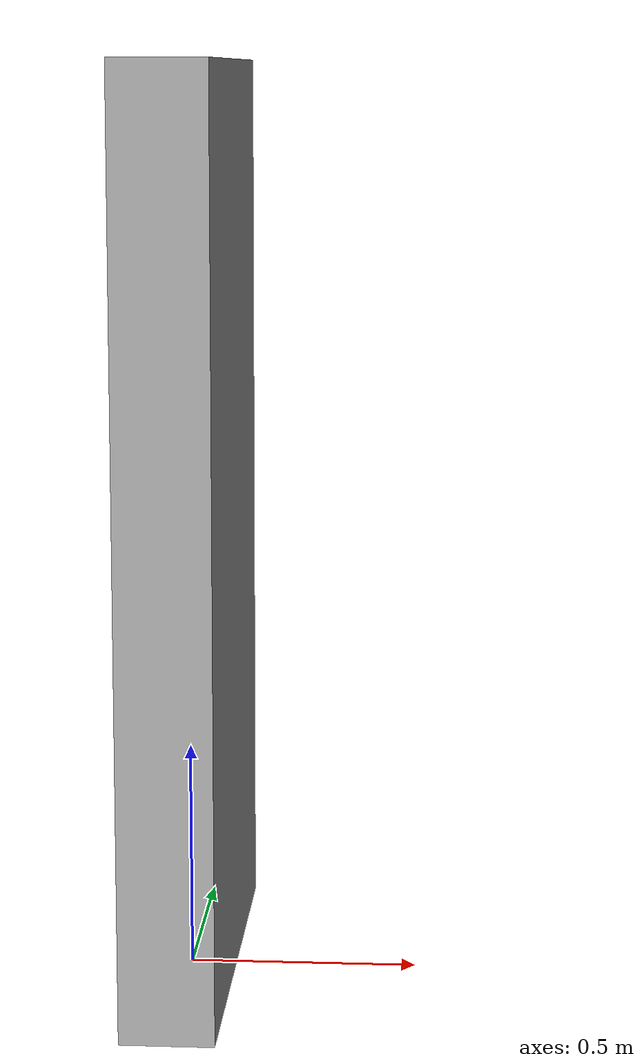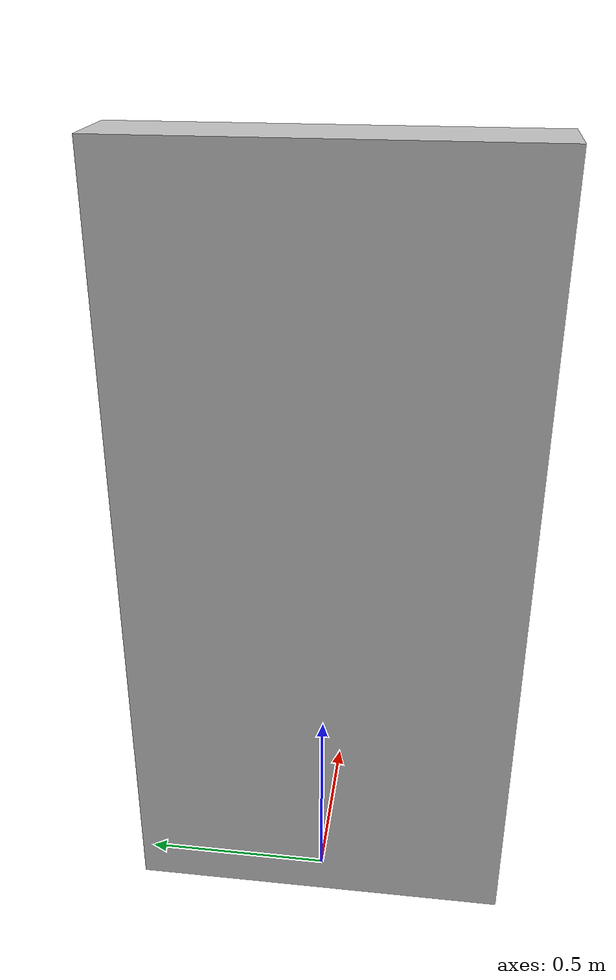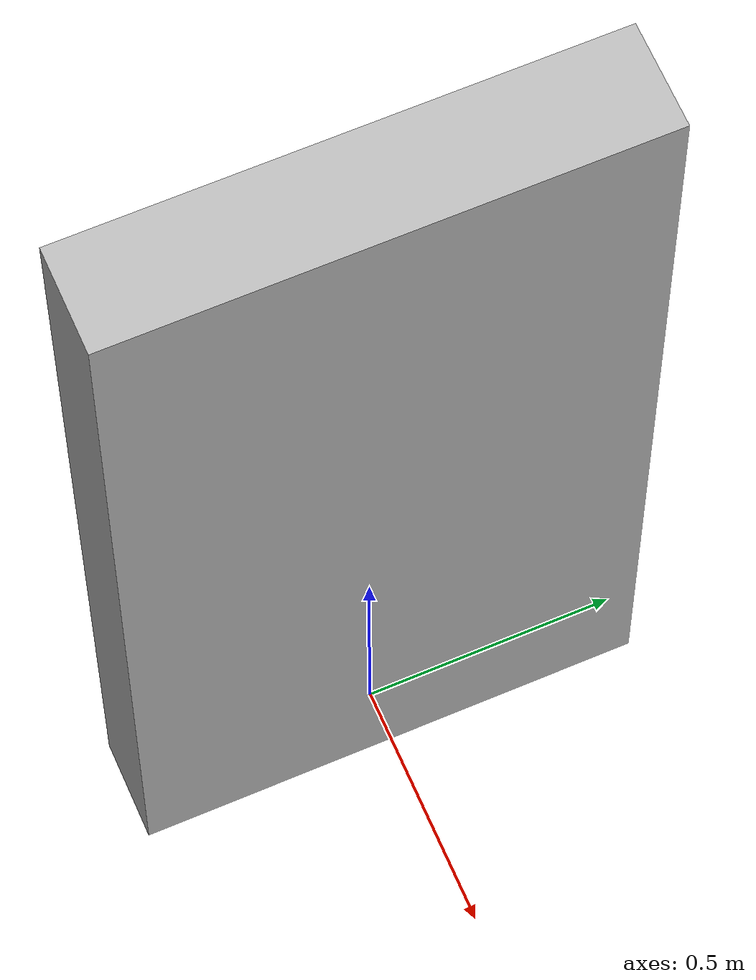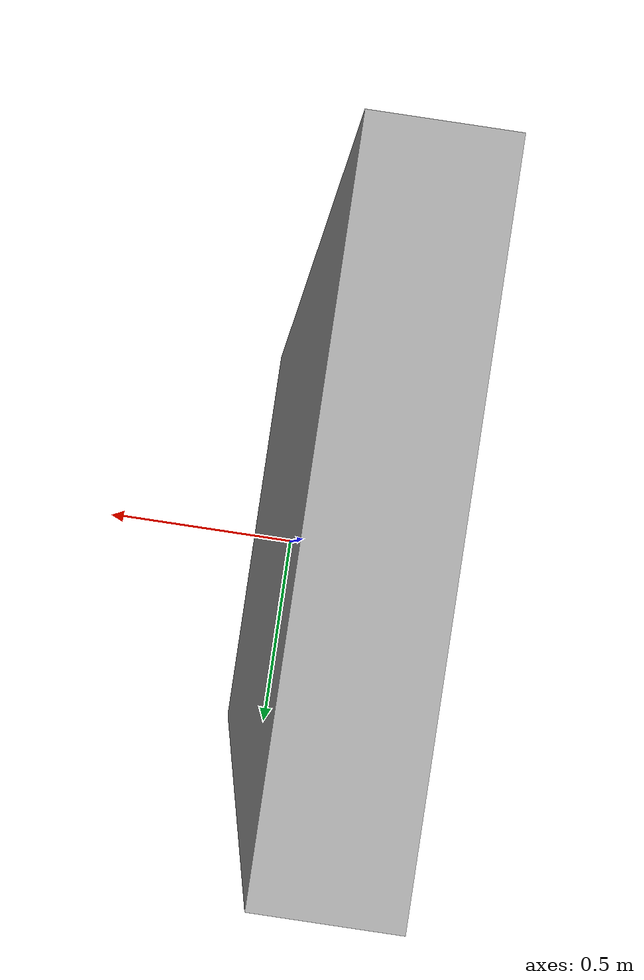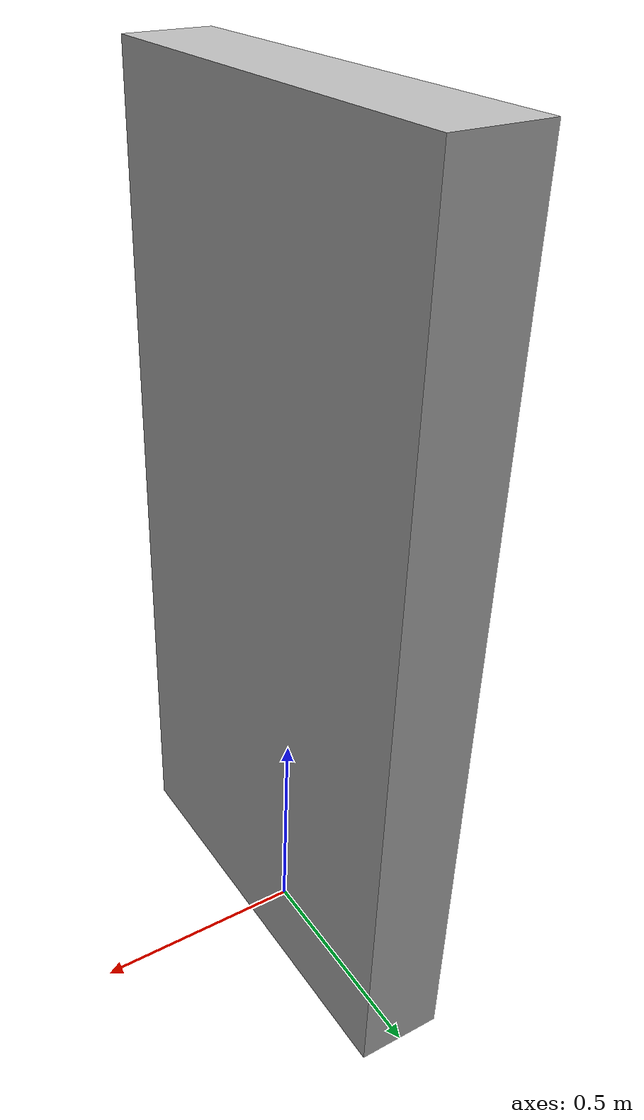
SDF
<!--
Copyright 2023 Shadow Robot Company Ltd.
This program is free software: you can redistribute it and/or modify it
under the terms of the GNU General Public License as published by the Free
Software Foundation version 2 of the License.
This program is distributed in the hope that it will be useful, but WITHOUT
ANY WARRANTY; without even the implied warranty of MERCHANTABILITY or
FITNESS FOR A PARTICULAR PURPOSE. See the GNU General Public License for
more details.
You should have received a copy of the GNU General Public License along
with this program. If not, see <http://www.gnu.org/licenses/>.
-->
<?xml version="1.0" ?>

<sdf version="1.4">
  <model name="human_protection_wall">
    <static>true</static>
    <link name="link">
      <inertial>
        <mass>20</mass>
      </inertial>
      <collision name="collision">
        <pose>0.0 0.0 0.0 0 0.0 0.0</pose>
        <geometry>
          <mesh>
            <uri>model://human_protection_wall/meshes/human_protection_wall.stl</uri>
          </mesh>
        </geometry>
      </collision>
      <visual name="visual">
        <pose>0.0 0.0 0.0 0 0.0 0.0</pose>
        <geometry>
          <mesh>
            <uri>model://human_protection_wall/meshes/human_protection_wall.stl</uri>
          </mesh>
        </geometry>
      </visual>
    </link>
  </model>
</sdf>
